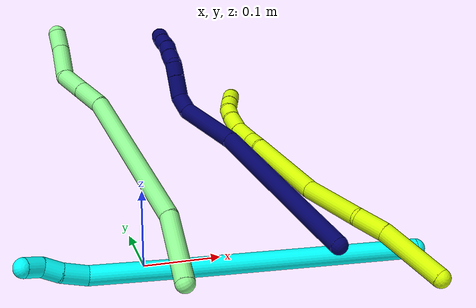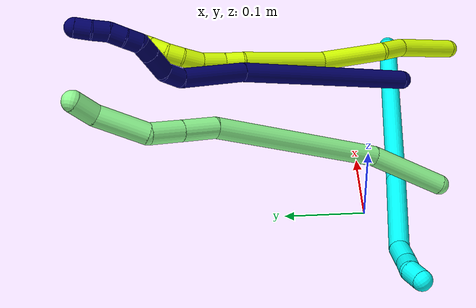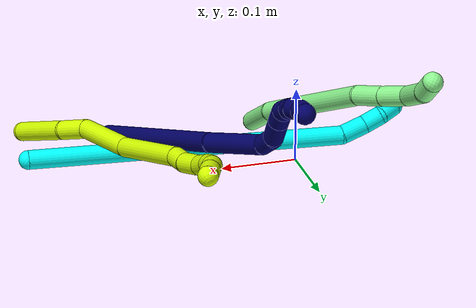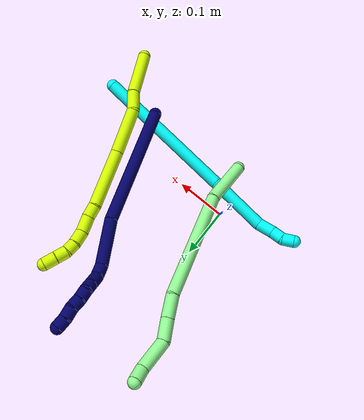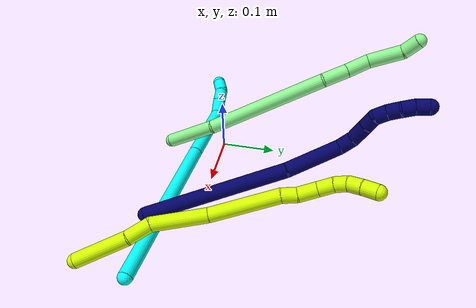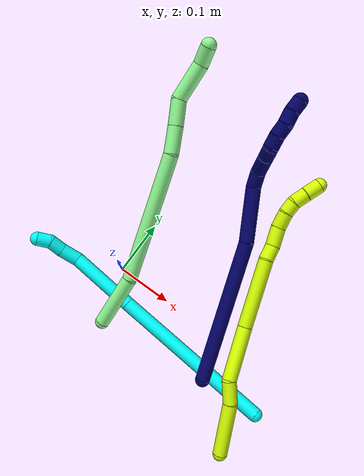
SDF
<sdf version="1.7">
 <world name="default">
  <model name="3">
   <static>0</static>
   <link name="3">
    <collision name="collision-cylinder-e_1_1_4">
     <pose>-0.132206 0.014616 -0.063108 -2.914 -1.11519 2.77908</pose>
     <geometry><cylinder><radius>0.0125</radius><length>0.294446</length></cylinder></geometry>
     <surface>
      <friction><ode><mu>1.16</mu><mu2>1.16</mu2><slip1>0</slip1><slip2>0</slip2></ode></friction>
      <contact><ode><kp>1e+06</kp><kd>1</kd><max_vel>0</max_vel><min_depth>0.001</min_depth></ode></contact>
     </surface>
    </collision>
    <visual name="visual-cylinder-e_1_1_4">
     <pose>-0.132206 0.014616 -0.063108 -2.914 -1.11519 2.77908</pose>
     <geometry><cylinder><radius>0.0125</radius><length>0.294446</length></cylinder></geometry>
     <material><ambient>0.003922 1 0.996078 1</ambient></material>
    </visual>
    <collision name="collision-cylinder-e_2_4_5">
     <pose>-0.319234 0.035861 -0.152931 -2.89835 -1.10549 2.7504</pose>
     <geometry><cylinder><radius>0.0125</radius><length>0.122689</length></cylinder></geometry>
     <surface>
      <friction><ode><mu>1.16</mu><mu2>1.16</mu2><slip1>0</slip1><slip2>0</slip2></ode></friction>
      <contact><ode><kp>1e+06</kp><kd>1</kd><max_vel>0</max_vel><min_depth>0.001</min_depth></ode></contact>
     </surface>
    </collision>
    <visual name="visual-cylinder-e_2_4_5">
     <pose>-0.319234 0.035861 -0.152931 -2.89835 -1.10549 2.7504</pose>
     <geometry><cylinder><radius>0.0125</radius><length>0.122689</length></cylinder></geometry>
     <material><ambient>0.003922 1 0.996078 1</ambient></material>
    </visual>
    <collision name="collision-cylinder-e_3_5_6">
     <pose>-0.390189 0.047033 -0.181714 -1.99804 -1.27077 1.70661</pose>
     <geometry><cylinder><radius>0.0125</radius><length>0.033774</length></cylinder></geometry>
     <surface>
      <friction><ode><mu>1.16</mu><mu2>1.16</mu2><slip1>0</slip1><slip2>0</slip2></ode></friction>
      <contact><ode><kp>1e+06</kp><kd>1</kd><max_vel>0</max_vel><min_depth>0.001</min_depth></ode></contact>
     </surface>
    </collision>
    <visual name="visual-cylinder-e_3_5_6">
     <pose>-0.390189 0.047033 -0.181714 -1.99804 -1.27077 1.70661</pose>
     <geometry><cylinder><radius>0.0125</radius><length>0.033774</length></cylinder></geometry>
     <material><ambient>0.003922 1 0.996078 1</ambient></material>
    </visual>
    <collision name="collision-cylinder-e_4_6_7">
     <pose>-0.417463 0.057122 -0.185572 -1.88303 -1.08882 1.38747</pose>
     <geometry><cylinder><radius>0.0125</radius><length>0.025147</length></cylinder></geometry>
     <surface>
      <friction><ode><mu>1.16</mu><mu2>1.16</mu2><slip1>0</slip1><slip2>0</slip2></ode></friction>
      <contact><ode><kp>1e+06</kp><kd>1</kd><max_vel>0</max_vel><min_depth>0.001</min_depth></ode></contact>
     </surface>
    </collision>
    <visual name="visual-cylinder-e_4_6_7">
     <pose>-0.417463 0.057122 -0.185572 -1.88303 -1.08882 1.38747</pose>
     <geometry><cylinder><radius>0.0125</radius><length>0.025147</length></cylinder></geometry>
     <material><ambient>0.003922 1 0.996078 1</ambient></material>
    </visual>
    <collision name="collision-cylinder-e_5_7_2">
     <pose>-0.440381 0.063883 -0.185583 -0.599322 -1.38982 0.504165</pose>
     <geometry><cylinder><radius>0.0125</radius><length>0.023944</length></cylinder></geometry>
     <surface>
      <friction><ode><mu>1.16</mu><mu2>1.16</mu2><slip1>0</slip1><slip2>0</slip2></ode></friction>
      <contact><ode><kp>1e+06</kp><kd>1</kd><max_vel>0</max_vel><min_depth>0.001</min_depth></ode></contact>
     </surface>
    </collision>
    <visual name="visual-cylinder-e_5_7_2">
     <pose>-0.440381 0.063883 -0.185583 -0.599322 -1.38982 0.504165</pose>
     <geometry><cylinder><radius>0.0125</radius><length>0.023944</length></cylinder></geometry>
     <material><ambient>0.003922 1 0.996078 1</ambient></material>
    </visual>
    <collision name="collision-sphere-2">
     <pose>-0.452157 0.065099 -0.183804 0 -0 0</pose>
     <geometry><sphere><radius>0.0125</radius></sphere></geometry>
     <surface>
      <friction><ode><mu>1.16</mu><mu2>1.16</mu2><slip1>0</slip1><slip2>0</slip2></ode></friction>
      <contact><ode><kp>1e+06</kp><kd>1</kd><max_vel>0</max_vel><min_depth>0.001</min_depth></ode></contact>
     </surface>
    </collision>
    <visual name="visual-sphere-2">
     <pose>-0.452157 0.065099 -0.183804 0 -0 0</pose>
     <geometry><sphere><radius>0.0125</radius></sphere></geometry>
     <material><ambient>0.003922 1 0.996078 1</ambient></material>
    </visual>
    <collision name="collision-sphere-7">
     <pose>-0.428604 0.062668 -0.187362 0 -0 0</pose>
     <geometry><sphere><radius>0.0125</radius></sphere></geometry>
     <surface>
      <friction><ode><mu>1.16</mu><mu2>1.16</mu2><slip1>0</slip1><slip2>0</slip2></ode></friction>
      <contact><ode><kp>1e+06</kp><kd>1</kd><max_vel>0</max_vel><min_depth>0.001</min_depth></ode></contact>
     </surface>
    </collision>
    <visual name="visual-sphere-7">
     <pose>-0.428604 0.062668 -0.187362 0 -0 0</pose>
     <geometry><sphere><radius>0.0125</radius></sphere></geometry>
     <material><ambient>0.003922 1 0.996078 1</ambient></material>
    </visual>
    <collision name="collision-sphere-6">
     <pose>-0.406322 0.051575 -0.183782 0 -0 0</pose>
     <geometry><sphere><radius>0.0125</radius></sphere></geometry>
     <surface>
      <friction><ode><mu>1.16</mu><mu2>1.16</mu2><slip1>0</slip1><slip2>0</slip2></ode></friction>
      <contact><ode><kp>1e+06</kp><kd>1</kd><max_vel>0</max_vel><min_depth>0.001</min_depth></ode></contact>
     </surface>
    </collision>
    <visual name="visual-sphere-6">
     <pose>-0.406322 0.051575 -0.183782 0 -0 0</pose>
     <geometry><sphere><radius>0.0125</radius></sphere></geometry>
     <material><ambient>0.003922 1 0.996078 1</ambient></material>
    </visual>
    <collision name="collision-sphere-5">
     <pose>-0.374057 0.042491 -0.179645 0 -0 0</pose>
     <geometry><sphere><radius>0.0125</radius></sphere></geometry>
     <surface>
      <friction><ode><mu>1.16</mu><mu2>1.16</mu2><slip1>0</slip1><slip2>0</slip2></ode></friction>
      <contact><ode><kp>1e+06</kp><kd>1</kd><max_vel>0</max_vel><min_depth>0.001</min_depth></ode></contact>
     </surface>
    </collision>
    <visual name="visual-sphere-5">
     <pose>-0.374057 0.042491 -0.179645 0 -0 0</pose>
     <geometry><sphere><radius>0.0125</radius></sphere></geometry>
     <material><ambient>0.003922 1 0.996078 1</ambient></material>
    </visual>
    <collision name="collision-sphere-1">
     <geometry><sphere><radius>0.0125</radius></sphere></geometry>
     <surface>
      <friction><ode><mu>1.16</mu><mu2>1.16</mu2><slip1>0</slip1><slip2>0</slip2></ode></friction>
      <contact><ode><kp>1e+06</kp><kd>1</kd><max_vel>0</max_vel><min_depth>0.001</min_depth></ode></contact>
     </surface>
    </collision>
    <visual name="visual-sphere-1">
     <geometry><sphere><radius>0.0125</radius></sphere></geometry>
     <material><ambient>0.003922 1 0.996078 1</ambient></material>
    </visual>
    <collision name="collision-sphere-4">
     <pose>-0.264412 0.029232 -0.126216 0 -0 0</pose>
     <geometry><sphere><radius>0.0125</radius></sphere></geometry>
     <surface>
      <friction><ode><mu>1.16</mu><mu2>1.16</mu2><slip1>0</slip1><slip2>0</slip2></ode></friction>
      <contact><ode><kp>1e+06</kp><kd>1</kd><max_vel>0</max_vel><min_depth>0.001</min_depth></ode></contact>
     </surface>
    </collision>
    <visual name="visual-sphere-4">
     <pose>-0.264412 0.029232 -0.126216 0 -0 0</pose>
     <geometry><sphere><radius>0.0125</radius></sphere></geometry>
     <material><ambient>0.003922 1 0.996078 1</ambient></material>
    </visual>
    <inertial>
     <pose>-0.224629 0.026516 -0.105184 0 -0 0</pose>
     <mass>0.5</mass>
     <inertia>
      <ixx>-0.000617</ixx>
      <ixy>0</ixy>
      <ixz>0</ixz>
      <iyy>0.002634</iyy>
      <iyz>0</iyz>
      <izz>0.001825</izz>
     </inertia>
    </inertial>
   </link>
   <pose>0.340594 -0.071135 0.01206 1.1376 0.09771 0.358022</pose>
  </model>
  <model name="7">
   <static>0</static>
   <link name="7">
    <collision name="collision-cylinder-e_1_1_4">
     <pose>-0.005815 0.012016 0.122889 -0.097468 -0.047062 0.002296</pose>
     <geometry><cylinder><radius>0.0125</radius><length>0.247223</length></cylinder></geometry>
     <surface>
      <friction><ode><mu>1.16</mu><mu2>1.16</mu2><slip1>0</slip1><slip2>0</slip2></ode></friction>
      <contact><ode><kp>1e+06</kp><kd>1</kd><max_vel>0</max_vel><min_depth>0.001</min_depth></ode></contact>
     </surface>
    </collision>
    <visual name="visual-cylinder-e_1_1_4">
     <pose>-0.005815 0.012016 0.122889 -0.097468 -0.047062 0.002296</pose>
     <geometry><cylinder><radius>0.0125</radius><length>0.247223</length></cylinder></geometry>
     <material><ambient>0.003922 0 0.403922 1</ambient></material>
    </visual>
    <collision name="collision-cylinder-e_2_4_5">
     <pose>-0.019199 0.02208 0.291252 0.042882 -0.164781 -0.003542</pose>
     <geometry><cylinder><radius>0.0125</radius><length>0.092283</length></cylinder></geometry>
     <surface>
      <friction><ode><mu>1.16</mu><mu2>1.16</mu2><slip1>0</slip1><slip2>0</slip2></ode></friction>
      <contact><ode><kp>1e+06</kp><kd>1</kd><max_vel>0</max_vel><min_depth>0.001</min_depth></ode></contact>
     </surface>
    </collision>
    <visual name="visual-cylinder-e_2_4_5">
     <pose>-0.019199 0.02208 0.291252 0.042882 -0.164781 -0.003542</pose>
     <geometry><cylinder><radius>0.0125</radius><length>0.092283</length></cylinder></geometry>
     <material><ambient>0.003922 0 0.403922 1</ambient></material>
    </visual>
    <collision name="collision-cylinder-e_3_5_6">
     <pose>-0.0238 0.01898 0.349374 0.090624 0.229621 0.010458</pose>
     <geometry><cylinder><radius>0.0125</radius><length>0.026083</length></cylinder></geometry>
     <surface>
      <friction><ode><mu>1.16</mu><mu2>1.16</mu2><slip1>0</slip1><slip2>0</slip2></ode></friction>
      <contact><ode><kp>1e+06</kp><kd>1</kd><max_vel>0</max_vel><min_depth>0.001</min_depth></ode></contact>
     </surface>
    </collision>
    <visual name="visual-cylinder-e_3_5_6">
     <pose>-0.0238 0.01898 0.349374 0.090624 0.229621 0.010458</pose>
     <geometry><cylinder><radius>0.0125</radius><length>0.026083</length></cylinder></geometry>
     <material><ambient>0.003922 0 0.403922 1</ambient></material>
    </visual>
    <collision name="collision-cylinder-e_4_6_7">
     <pose>-0.011293 0.014938 0.374337 0.230666 0.646039 0.077519</pose>
     <geometry><cylinder><radius>0.0125</radius><length>0.031688</length></cylinder></geometry>
     <surface>
      <friction><ode><mu>1.16</mu><mu2>1.16</mu2><slip1>0</slip1><slip2>0</slip2></ode></friction>
      <contact><ode><kp>1e+06</kp><kd>1</kd><max_vel>0</max_vel><min_depth>0.001</min_depth></ode></contact>
     </surface>
    </collision>
    <visual name="visual-cylinder-e_4_6_7">
     <pose>-0.011293 0.014938 0.374337 0.230666 0.646039 0.077519</pose>
     <geometry><cylinder><radius>0.0125</radius><length>0.031688</length></cylinder></geometry>
     <material><ambient>0.003922 0 0.403922 1</ambient></material>
    </visual>
    <collision name="collision-cylinder-e_5_7_8">
     <pose>0.004549 0.010219 0.395061 0.213973 0.632292 0.070234</pose>
     <geometry><cylinder><radius>0.0125</radius><length>0.021331</length></cylinder></geometry>
     <surface>
      <friction><ode><mu>1.16</mu><mu2>1.16</mu2><slip1>0</slip1><slip2>0</slip2></ode></friction>
      <contact><ode><kp>1e+06</kp><kd>1</kd><max_vel>0</max_vel><min_depth>0.001</min_depth></ode></contact>
     </surface>
    </collision>
    <visual name="visual-cylinder-e_5_7_8">
     <pose>0.004549 0.010219 0.395061 0.213973 0.632292 0.070234</pose>
     <geometry><cylinder><radius>0.0125</radius><length>0.021331</length></cylinder></geometry>
     <material><ambient>0.003922 0 0.403922 1</ambient></material>
    </visual>
    <collision name="collision-cylinder-e_6_8_9">
     <pose>0.013128 0.009736 0.413281 -0.136123 0.225778 -0.015456</pose>
     <geometry><cylinder><radius>0.0125</radius><length>0.020325</length></cylinder></geometry>
     <surface>
      <friction><ode><mu>1.16</mu><mu2>1.16</mu2><slip1>0</slip1><slip2>0</slip2></ode></friction>
      <contact><ode><kp>1e+06</kp><kd>1</kd><max_vel>0</max_vel><min_depth>0.001</min_depth></ode></contact>
     </surface>
    </collision>
    <visual name="visual-cylinder-e_6_8_9">
     <pose>0.013128 0.009736 0.413281 -0.136123 0.225778 -0.015456</pose>
     <geometry><cylinder><radius>0.0125</radius><length>0.020325</length></cylinder></geometry>
     <material><ambient>0.003922 0 0.403922 1</ambient></material>
    </visual>
    <collision name="collision-cylinder-e_7_9_10">
     <pose>0.017948 0.014 0.432324 -0.306421 0.257163 -0.039926</pose>
     <geometry><cylinder><radius>0.0125</radius><length>0.020019</length></cylinder></geometry>
     <surface>
      <friction><ode><mu>1.16</mu><mu2>1.16</mu2><slip1>0</slip1><slip2>0</slip2></ode></friction>
      <contact><ode><kp>1e+06</kp><kd>1</kd><max_vel>0</max_vel><min_depth>0.001</min_depth></ode></contact>
     </surface>
    </collision>
    <visual name="visual-cylinder-e_7_9_10">
     <pose>0.017948 0.014 0.432324 -0.306421 0.257163 -0.039926</pose>
     <geometry><cylinder><radius>0.0125</radius><length>0.020019</length></cylinder></geometry>
     <material><ambient>0.003922 0 0.403922 1</ambient></material>
    </visual>
    <collision name="collision-cylinder-e_8_10_11">
     <pose>0.020387 0.019543 0.451587 -0.255642 -0.010302 0.001324</pose>
     <geometry><cylinder><radius>0.0125</radius><length>0.020743</length></cylinder></geometry>
     <surface>
      <friction><ode><mu>1.16</mu><mu2>1.16</mu2><slip1>0</slip1><slip2>0</slip2></ode></friction>
      <contact><ode><kp>1e+06</kp><kd>1</kd><max_vel>0</max_vel><min_depth>0.001</min_depth></ode></contact>
     </surface>
    </collision>
    <visual name="visual-cylinder-e_8_10_11">
     <pose>0.020387 0.019543 0.451587 -0.255642 -0.010302 0.001324</pose>
     <geometry><cylinder><radius>0.0125</radius><length>0.020743</length></cylinder></geometry>
     <material><ambient>0.003922 0 0.403922 1</ambient></material>
    </visual>
    <collision name="collision-cylinder-e_9_11_2">
     <pose>0.020646 0.026656 0.470718 -0.458593 0.036051 -0.008415</pose>
     <geometry><cylinder><radius>0.0125</radius><length>0.020304</length></cylinder></geometry>
     <surface>
      <friction><ode><mu>1.16</mu><mu2>1.16</mu2><slip1>0</slip1><slip2>0</slip2></ode></friction>
      <contact><ode><kp>1e+06</kp><kd>1</kd><max_vel>0</max_vel><min_depth>0.001</min_depth></ode></contact>
     </surface>
    </collision>
    <visual name="visual-cylinder-e_9_11_2">
     <pose>0.020646 0.026656 0.470718 -0.458593 0.036051 -0.008415</pose>
     <geometry><cylinder><radius>0.0125</radius><length>0.020304</length></cylinder></geometry>
     <material><ambient>0.003922 0 0.403922 1</ambient></material>
    </visual>
    <collision name="collision-sphere-2">
     <pose>0.021012 0.031147 0.479815 0 -0 0</pose>
     <geometry><sphere><radius>0.0125</radius></sphere></geometry>
     <surface>
      <friction><ode><mu>1.16</mu><mu2>1.16</mu2><slip1>0</slip1><slip2>0</slip2></ode></friction>
      <contact><ode><kp>1e+06</kp><kd>1</kd><max_vel>0</max_vel><min_depth>0.001</min_depth></ode></contact>
     </surface>
    </collision>
    <visual name="visual-sphere-2">
     <pose>0.021012 0.031147 0.479815 0 -0 0</pose>
     <geometry><sphere><radius>0.0125</radius></sphere></geometry>
     <material><ambient>0.003922 0 0.403922 1</ambient></material>
    </visual>
    <collision name="collision-sphere-11">
     <pose>0.020281 0.022165 0.461621 0 -0 0</pose>
     <geometry><sphere><radius>0.0125</radius></sphere></geometry>
     <surface>
      <friction><ode><mu>1.16</mu><mu2>1.16</mu2><slip1>0</slip1><slip2>0</slip2></ode></friction>
      <contact><ode><kp>1e+06</kp><kd>1</kd><max_vel>0</max_vel><min_depth>0.001</min_depth></ode></contact>
     </surface>
    </collision>
    <visual name="visual-sphere-11">
     <pose>0.020281 0.022165 0.461621 0 -0 0</pose>
     <geometry><sphere><radius>0.0125</radius></sphere></geometry>
     <material><ambient>0.003922 0 0.403922 1</ambient></material>
    </visual>
    <collision name="collision-sphere-10">
     <pose>0.020494 0.01692 0.441554 0 -0 0</pose>
     <geometry><sphere><radius>0.0125</radius></sphere></geometry>
     <surface>
      <friction><ode><mu>1.16</mu><mu2>1.16</mu2><slip1>0</slip1><slip2>0</slip2></ode></friction>
      <contact><ode><kp>1e+06</kp><kd>1</kd><max_vel>0</max_vel><min_depth>0.001</min_depth></ode></contact>
     </surface>
    </collision>
    <visual name="visual-sphere-10">
     <pose>0.020494 0.01692 0.441554 0 -0 0</pose>
     <geometry><sphere><radius>0.0125</radius></sphere></geometry>
     <material><ambient>0.003922 0 0.403922 1</ambient></material>
    </visual>
    <collision name="collision-sphere-9">
     <pose>0.015403 0.01108 0.423094 0 -0 0</pose>
     <geometry><sphere><radius>0.0125</radius></sphere></geometry>
     <surface>
      <friction><ode><mu>1.16</mu><mu2>1.16</mu2><slip1>0</slip1><slip2>0</slip2></ode></friction>
      <contact><ode><kp>1e+06</kp><kd>1</kd><max_vel>0</max_vel><min_depth>0.001</min_depth></ode></contact>
     </surface>
    </collision>
    <visual name="visual-sphere-9">
     <pose>0.015403 0.01108 0.423094 0 -0 0</pose>
     <geometry><sphere><radius>0.0125</radius></sphere></geometry>
     <material><ambient>0.003922 0 0.403922 1</ambient></material>
    </visual>
    <collision name="collision-sphere-4">
     <pose>-0.01163 0.024032 0.245777 0 -0 0</pose>
     <geometry><sphere><radius>0.0125</radius></sphere></geometry>
     <surface>
      <friction><ode><mu>1.16</mu><mu2>1.16</mu2><slip1>0</slip1><slip2>0</slip2></ode></friction>
      <contact><ode><kp>1e+06</kp><kd>1</kd><max_vel>0</max_vel><min_depth>0.001</min_depth></ode></contact>
     </surface>
    </collision>
    <visual name="visual-sphere-4">
     <pose>-0.01163 0.024032 0.245777 0 -0 0</pose>
     <geometry><sphere><radius>0.0125</radius></sphere></geometry>
     <material><ambient>0.003922 0 0.403922 1</ambient></material>
    </visual>
    <collision name="collision-sphere-1">
     <geometry><sphere><radius>0.0125</radius></sphere></geometry>
     <surface>
      <friction><ode><mu>1.16</mu><mu2>1.16</mu2><slip1>0</slip1><slip2>0</slip2></ode></friction>
      <contact><ode><kp>1e+06</kp><kd>1</kd><max_vel>0</max_vel><min_depth>0.001</min_depth></ode></contact>
     </surface>
    </collision>
    <visual name="visual-sphere-1">
     <geometry><sphere><radius>0.0125</radius></sphere></geometry>
     <material><ambient>0.003922 0 0.403922 1</ambient></material>
    </visual>
    <collision name="collision-sphere-8">
     <pose>0.010853 0.008392 0.403469 0 -0 0</pose>
     <geometry><sphere><radius>0.0125</radius></sphere></geometry>
     <surface>
      <friction><ode><mu>1.16</mu><mu2>1.16</mu2><slip1>0</slip1><slip2>0</slip2></ode></friction>
      <contact><ode><kp>1e+06</kp><kd>1</kd><max_vel>0</max_vel><min_depth>0.001</min_depth></ode></contact>
     </surface>
    </collision>
    <visual name="visual-sphere-8">
     <pose>0.010853 0.008392 0.403469 0 -0 0</pose>
     <geometry><sphere><radius>0.0125</radius></sphere></geometry>
     <material><ambient>0.003922 0 0.403922 1</ambient></material>
    </visual>
    <collision name="collision-sphere-5">
     <pose>-0.026768 0.020129 0.336727 0 -0 0</pose>
     <geometry><sphere><radius>0.0125</radius></sphere></geometry>
     <surface>
      <friction><ode><mu>1.16</mu><mu2>1.16</mu2><slip1>0</slip1><slip2>0</slip2></ode></friction>
      <contact><ode><kp>1e+06</kp><kd>1</kd><max_vel>0</max_vel><min_depth>0.001</min_depth></ode></contact>
     </surface>
    </collision>
    <visual name="visual-sphere-5">
     <pose>-0.026768 0.020129 0.336727 0 -0 0</pose>
     <geometry><sphere><radius>0.0125</radius></sphere></geometry>
     <material><ambient>0.003922 0 0.403922 1</ambient></material>
    </visual>
    <collision name="collision-sphere-6">
     <pose>-0.020832 0.017831 0.362021 0 -0 0</pose>
     <geometry><sphere><radius>0.0125</radius></sphere></geometry>
     <surface>
      <friction><ode><mu>1.16</mu><mu2>1.16</mu2><slip1>0</slip1><slip2>0</slip2></ode></friction>
      <contact><ode><kp>1e+06</kp><kd>1</kd><max_vel>0</max_vel><min_depth>0.001</min_depth></ode></contact>
     </surface>
    </collision>
    <visual name="visual-sphere-6">
     <pose>-0.020832 0.017831 0.362021 0 -0 0</pose>
     <geometry><sphere><radius>0.0125</radius></sphere></geometry>
     <material><ambient>0.003922 0 0.403922 1</ambient></material>
    </visual>
    <collision name="collision-sphere-7">
     <pose>-0.001754 0.012046 0.386654 0 -0 0</pose>
     <geometry><sphere><radius>0.0125</radius></sphere></geometry>
     <surface>
      <friction><ode><mu>1.16</mu><mu2>1.16</mu2><slip1>0</slip1><slip2>0</slip2></ode></friction>
      <contact><ode><kp>1e+06</kp><kd>1</kd><max_vel>0</max_vel><min_depth>0.001</min_depth></ode></contact>
     </surface>
    </collision>
    <visual name="visual-sphere-7">
     <pose>-0.001754 0.012046 0.386654 0 -0 0</pose>
     <geometry><sphere><radius>0.0125</radius></sphere></geometry>
     <material><ambient>0.003922 0 0.403922 1</ambient></material>
    </visual>
    <inertial>
     <pose>-0.005246 0.015239 0.24528 0 -0 0</pose>
     <mass>0.5</mass>
     <inertia>
      <ixx>0.001353</ixx>
      <ixy>0</ixy>
      <ixz>0</ixz>
      <iyy>0.001351</iyy>
      <iyz>0</iyz>
      <izz>-1.7e-05</izz>
     </inertia>
    </inertial>
   </link>
   <pose>0.231323 -0.076341 0.032037 -0.846872 -0.927189 -0.230762</pose>
  </model>
  <model name="13">
   <static>0</static>
   <link name="13">
    <collision name="collision-cylinder-e_1_1_4">
     <pose>-0.005155 0.049683 0.002037 -1.52982 -0.103301 0.099159</pose>
     <geometry><cylinder><radius>0.0125</radius><length>0.099983</length></cylinder></geometry>
     <surface>
      <friction><ode><mu>1.16</mu><mu2>1.16</mu2><slip1>0</slip1><slip2>0</slip2></ode></friction>
      <contact><ode><kp>1e+06</kp><kd>1</kd><max_vel>0</max_vel><min_depth>0.001</min_depth></ode></contact>
     </surface>
    </collision>
    <visual name="visual-cylinder-e_1_1_4">
     <pose>-0.005155 0.049683 0.002037 -1.52982 -0.103301 0.099159</pose>
     <geometry><cylinder><radius>0.0125</radius><length>0.099983</length></cylinder></geometry>
     <material><ambient>0.564706 0.984314 0.572549 1</ambient></material>
    </visual>
    <collision name="collision-cylinder-e_2_4_5">
     <pose>-0.029908 0.206158 -0.018666 -1.78059 -0.177605 0.219102</pose>
     <geometry><cylinder><radius>0.0125</radius><length>0.221861</length></cylinder></geometry>
     <surface>
      <friction><ode><mu>1.16</mu><mu2>1.16</mu2><slip1>0</slip1><slip2>0</slip2></ode></friction>
      <contact><ode><kp>1e+06</kp><kd>1</kd><max_vel>0</max_vel><min_depth>0.001</min_depth></ode></contact>
     </surface>
    </collision>
    <visual name="visual-cylinder-e_2_4_5">
     <pose>-0.029908 0.206158 -0.018666 -1.78059 -0.177605 0.219102</pose>
     <geometry><cylinder><radius>0.0125</radius><length>0.221861</length></cylinder></geometry>
     <material><ambient>0.564706 0.984314 0.572549 1</ambient></material>
    </visual>
    <collision name="collision-cylinder-e_3_5_6">
     <pose>-0.053002 0.332563 -0.051127 -2.03097 -0.158316 0.254323</pose>
     <geometry><cylinder><radius>0.0125</radius><length>0.044337</length></cylinder></geometry>
     <surface>
      <friction><ode><mu>1.16</mu><mu2>1.16</mu2><slip1>0</slip1><slip2>0</slip2></ode></friction>
      <contact><ode><kp>1e+06</kp><kd>1</kd><max_vel>0</max_vel><min_depth>0.001</min_depth></ode></contact>
     </surface>
    </collision>
    <visual name="visual-cylinder-e_3_5_6">
     <pose>-0.053002 0.332563 -0.051127 -2.03097 -0.158316 0.254323</pose>
     <geometry><cylinder><radius>0.0125</radius><length>0.044337</length></cylinder></geometry>
     <material><ambient>0.564706 0.984314 0.572549 1</ambient></material>
    </visual>
    <collision name="collision-cylinder-e_4_6_7">
     <pose>-0.060728 0.37048 -0.07011 -2.03923 -0.20341 0.329035</pose>
     <geometry><cylinder><radius>0.0125</radius><length>0.041888</length></cylinder></geometry>
     <surface>
      <friction><ode><mu>1.16</mu><mu2>1.16</mu2><slip1>0</slip1><slip2>0</slip2></ode></friction>
      <contact><ode><kp>1e+06</kp><kd>1</kd><max_vel>0</max_vel><min_depth>0.001</min_depth></ode></contact>
     </surface>
    </collision>
    <visual name="visual-cylinder-e_4_6_7">
     <pose>-0.060728 0.37048 -0.07011 -2.03923 -0.20341 0.329035</pose>
     <geometry><cylinder><radius>0.0125</radius><length>0.041888</length></cylinder></geometry>
     <material><ambient>0.564706 0.984314 0.572549 1</ambient></material>
    </visual>
    <collision name="collision-cylinder-e_5_7_8">
     <pose>-0.066062 0.419608 -0.078977 -1.55803 -0.035792 0.035338</pose>
     <geometry><cylinder><radius>0.0125</radius><length>0.061695</length></cylinder></geometry>
     <surface>
      <friction><ode><mu>1.16</mu><mu2>1.16</mu2><slip1>0</slip1><slip2>0</slip2></ode></friction>
      <contact><ode><kp>1e+06</kp><kd>1</kd><max_vel>0</max_vel><min_depth>0.001</min_depth></ode></contact>
     </surface>
    </collision>
    <visual name="visual-cylinder-e_5_7_8">
     <pose>-0.066062 0.419608 -0.078977 -1.55803 -0.035792 0.035338</pose>
     <geometry><cylinder><radius>0.0125</radius><length>0.061695</length></cylinder></geometry>
     <material><ambient>0.564706 0.984314 0.572549 1</ambient></material>
    </visual>
    <collision name="collision-cylinder-e_6_8_2">
     <pose>-0.07259 0.464457 -0.077012 -1.45922 -0.366902 0.328826</pose>
     <geometry><cylinder><radius>0.0125</radius><length>0.030236</length></cylinder></geometry>
     <surface>
      <friction><ode><mu>1.16</mu><mu2>1.16</mu2><slip1>0</slip1><slip2>0</slip2></ode></friction>
      <contact><ode><kp>1e+06</kp><kd>1</kd><max_vel>0</max_vel><min_depth>0.001</min_depth></ode></contact>
     </surface>
    </collision>
    <visual name="visual-cylinder-e_6_8_2">
     <pose>-0.07259 0.464457 -0.077012 -1.45922 -0.366902 0.328826</pose>
     <geometry><cylinder><radius>0.0125</radius><length>0.030236</length></cylinder></geometry>
     <material><ambient>0.564706 0.984314 0.572549 1</ambient></material>
    </visual>
    <collision name="collision-sphere-2">
     <pose>-0.078013 0.478481 -0.075441 0 -0 0</pose>
     <geometry><sphere><radius>0.0125</radius></sphere></geometry>
     <surface>
      <friction><ode><mu>1.16</mu><mu2>1.16</mu2><slip1>0</slip1><slip2>0</slip2></ode></friction>
      <contact><ode><kp>1e+06</kp><kd>1</kd><max_vel>0</max_vel><min_depth>0.001</min_depth></ode></contact>
     </surface>
    </collision>
    <visual name="visual-sphere-2">
     <pose>-0.078013 0.478481 -0.075441 0 -0 0</pose>
     <geometry><sphere><radius>0.0125</radius></sphere></geometry>
     <material><ambient>0.564706 0.984314 0.572549 1</ambient></material>
    </visual>
    <collision name="collision-sphere-4">
     <pose>-0.01031 0.099366 0.004074 0 -0 0</pose>
     <geometry><sphere><radius>0.0125</radius></sphere></geometry>
     <surface>
      <friction><ode><mu>1.16</mu><mu2>1.16</mu2><slip1>0</slip1><slip2>0</slip2></ode></friction>
      <contact><ode><kp>1e+06</kp><kd>1</kd><max_vel>0</max_vel><min_depth>0.001</min_depth></ode></contact>
     </surface>
    </collision>
    <visual name="visual-sphere-4">
     <pose>-0.01031 0.099366 0.004074 0 -0 0</pose>
     <geometry><sphere><radius>0.0125</radius></sphere></geometry>
     <material><ambient>0.564706 0.984314 0.572549 1</ambient></material>
    </visual>
    <collision name="collision-sphere-1">
     <geometry><sphere><radius>0.0125</radius></sphere></geometry>
     <surface>
      <friction><ode><mu>1.16</mu><mu2>1.16</mu2><slip1>0</slip1><slip2>0</slip2></ode></friction>
      <contact><ode><kp>1e+06</kp><kd>1</kd><max_vel>0</max_vel><min_depth>0.001</min_depth></ode></contact>
     </surface>
    </collision>
    <visual name="visual-sphere-1">
     <geometry><sphere><radius>0.0125</radius></sphere></geometry>
     <material><ambient>0.564706 0.984314 0.572549 1</ambient></material>
    </visual>
    <collision name="collision-sphere-8">
     <pose>-0.067166 0.450434 -0.078583 0 -0 0</pose>
     <geometry><sphere><radius>0.0125</radius></sphere></geometry>
     <surface>
      <friction><ode><mu>1.16</mu><mu2>1.16</mu2><slip1>0</slip1><slip2>0</slip2></ode></friction>
      <contact><ode><kp>1e+06</kp><kd>1</kd><max_vel>0</max_vel><min_depth>0.001</min_depth></ode></contact>
     </surface>
    </collision>
    <visual name="visual-sphere-8">
     <pose>-0.067166 0.450434 -0.078583 0 -0 0</pose>
     <geometry><sphere><radius>0.0125</radius></sphere></geometry>
     <material><ambient>0.564706 0.984314 0.572549 1</ambient></material>
    </visual>
    <collision name="collision-sphere-5">
     <pose>-0.049507 0.31295 -0.041405 0 -0 0</pose>
     <geometry><sphere><radius>0.0125</radius></sphere></geometry>
     <surface>
      <friction><ode><mu>1.16</mu><mu2>1.16</mu2><slip1>0</slip1><slip2>0</slip2></ode></friction>
      <contact><ode><kp>1e+06</kp><kd>1</kd><max_vel>0</max_vel><min_depth>0.001</min_depth></ode></contact>
     </surface>
    </collision>
    <visual name="visual-sphere-5">
     <pose>-0.049507 0.31295 -0.041405 0 -0 0</pose>
     <geometry><sphere><radius>0.0125</radius></sphere></geometry>
     <material><ambient>0.564706 0.984314 0.572549 1</ambient></material>
    </visual>
    <collision name="collision-sphere-6">
     <pose>-0.056497 0.352177 -0.060848 0 -0 0</pose>
     <geometry><sphere><radius>0.0125</radius></sphere></geometry>
     <surface>
      <friction><ode><mu>1.16</mu><mu2>1.16</mu2><slip1>0</slip1><slip2>0</slip2></ode></friction>
      <contact><ode><kp>1e+06</kp><kd>1</kd><max_vel>0</max_vel><min_depth>0.001</min_depth></ode></contact>
     </surface>
    </collision>
    <visual name="visual-sphere-6">
     <pose>-0.056497 0.352177 -0.060848 0 -0 0</pose>
     <geometry><sphere><radius>0.0125</radius></sphere></geometry>
     <material><ambient>0.564706 0.984314 0.572549 1</ambient></material>
    </visual>
    <collision name="collision-sphere-7">
     <pose>-0.064959 0.388783 -0.079371 0 -0 0</pose>
     <geometry><sphere><radius>0.0125</radius></sphere></geometry>
     <surface>
      <friction><ode><mu>1.16</mu><mu2>1.16</mu2><slip1>0</slip1><slip2>0</slip2></ode></friction>
      <contact><ode><kp>1e+06</kp><kd>1</kd><max_vel>0</max_vel><min_depth>0.001</min_depth></ode></contact>
     </surface>
    </collision>
    <visual name="visual-sphere-7">
     <pose>-0.064959 0.388783 -0.079371 0 -0 0</pose>
     <geometry><sphere><radius>0.0125</radius></sphere></geometry>
     <material><ambient>0.564706 0.984314 0.572549 1</ambient></material>
    </visual>
    <inertial>
     <pose>-0.03663 0.241801 -0.032684 0 -0 0</pose>
     <mass>0.5</mass>
     <inertia>
      <ixx>0.001215</ixx>
      <ixy>0</ixy>
      <ixz>0</ixz>
      <iyy>9.6e-05</iyy>
      <iyz>0</iyz>
      <izz>-0.000841</izz>
     </inertia>
    </inertial>
   </link>
   <pose>0.029657 -0.097715 0.017709 0.720665 0.897841 0.562963</pose>
  </model>
  <model name="15">
   <static>0</static>
   <link name="15">
    <collision name="collision-cylinder-e_1_1_4">
     <pose>-0.032429 0.018334 -0.027591 -2.55509 -0.774759 1.86732</pose>
     <geometry><cylinder><radius>0.0125</radius><length>0.092715</length></cylinder></geometry>
     <surface>
      <friction><ode><mu>1.16</mu><mu2>1.16</mu2><slip1>0</slip1><slip2>0</slip2></ode></friction>
      <contact><ode><kp>1e+06</kp><kd>1</kd><max_vel>0</max_vel><min_depth>0.001</min_depth></ode></contact>
     </surface>
    </collision>
    <visual name="visual-cylinder-e_1_1_4">
     <pose>-0.032429 0.018334 -0.027591 -2.55509 -0.774759 1.86732</pose>
     <geometry><cylinder><radius>0.0125</radius><length>0.092715</length></cylinder></geometry>
     <material><ambient>0.835294 1 0 1</ambient></material>
    </visual>
    <collision name="collision-cylinder-e_2_4_5">
     <pose>-0.081004 0.040435 -0.06664 -2.82401 -0.929162 2.52303</pose>
     <geometry><cylinder><radius>0.0125</radius><length>0.040308</length></cylinder></geometry>
     <surface>
      <friction><ode><mu>1.16</mu><mu2>1.16</mu2><slip1>0</slip1><slip2>0</slip2></ode></friction>
      <contact><ode><kp>1e+06</kp><kd>1</kd><max_vel>0</max_vel><min_depth>0.001</min_depth></ode></contact>
     </surface>
    </collision>
    <visual name="visual-cylinder-e_2_4_5">
     <pose>-0.081004 0.040435 -0.06664 -2.82401 -0.929162 2.52303</pose>
     <geometry><cylinder><radius>0.0125</radius><length>0.040308</length></cylinder></geometry>
     <material><ambient>0.835294 1 0 1</ambient></material>
    </visual>
    <collision name="collision-cylinder-e_3_5_6">
     <pose>-0.120948 0.060272 -0.114726 -2.72811 -0.536736 1.83846</pose>
     <geometry><cylinder><radius>0.0125</radius><length>0.093084</length></cylinder></geometry>
     <surface>
      <friction><ode><mu>1.16</mu><mu2>1.16</mu2><slip1>0</slip1><slip2>0</slip2></ode></friction>
      <contact><ode><kp>1e+06</kp><kd>1</kd><max_vel>0</max_vel><min_depth>0.001</min_depth></ode></contact>
     </surface>
    </collision>
    <visual name="visual-cylinder-e_3_5_6">
     <pose>-0.120948 0.060272 -0.114726 -2.72811 -0.536736 1.83846</pose>
     <geometry><cylinder><radius>0.0125</radius><length>0.093084</length></cylinder></geometry>
     <material><ambient>0.835294 1 0 1</ambient></material>
    </visual>
    <collision name="collision-cylinder-e_4_6_7">
     <pose>-0.179956 0.102193 -0.191544 -2.57003 -0.635001 1.68248</pose>
     <geometry><cylinder><radius>0.0125</radius><length>0.118713</length></cylinder></geometry>
     <surface>
      <friction><ode><mu>1.16</mu><mu2>1.16</mu2><slip1>0</slip1><slip2>0</slip2></ode></friction>
      <contact><ode><kp>1e+06</kp><kd>1</kd><max_vel>0</max_vel><min_depth>0.001</min_depth></ode></contact>
     </surface>
    </collision>
    <visual name="visual-cylinder-e_4_6_7">
     <pose>-0.179956 0.102193 -0.191544 -2.57003 -0.635001 1.68248</pose>
     <geometry><cylinder><radius>0.0125</radius><length>0.118713</length></cylinder></geometry>
     <material><ambient>0.835294 1 0 1</ambient></material>
    </visual>
    <collision name="collision-cylinder-e_5_7_8">
     <pose>-0.220327 0.133928 -0.241827 -2.61366 -0.416024 1.32601</pose>
     <geometry><cylinder><radius>0.0125</radius><length>0.025545</length></cylinder></geometry>
     <surface>
      <friction><ode><mu>1.16</mu><mu2>1.16</mu2><slip1>0</slip1><slip2>0</slip2></ode></friction>
      <contact><ode><kp>1e+06</kp><kd>1</kd><max_vel>0</max_vel><min_depth>0.001</min_depth></ode></contact>
     </surface>
    </collision>
    <visual name="visual-cylinder-e_5_7_8">
     <pose>-0.220327 0.133928 -0.241827 -2.61366 -0.416024 1.32601</pose>
     <geometry><cylinder><radius>0.0125</radius><length>0.025545</length></cylinder></geometry>
     <material><ambient>0.835294 1 0 1</ambient></material>
    </visual>
    <collision name="collision-cylinder-e_6_8_9">
     <pose>-0.235417 0.147016 -0.263034 -2.56662 -0.643281 1.69001</pose>
     <geometry><cylinder><radius>0.0125</radius><length>0.033105</length></cylinder></geometry>
     <surface>
      <friction><ode><mu>1.16</mu><mu2>1.16</mu2><slip1>0</slip1><slip2>0</slip2></ode></friction>
      <contact><ode><kp>1e+06</kp><kd>1</kd><max_vel>0</max_vel><min_depth>0.001</min_depth></ode></contact>
     </surface>
    </collision>
    <visual name="visual-cylinder-e_6_8_9">
     <pose>-0.235417 0.147016 -0.263034 -2.56662 -0.643281 1.69001</pose>
     <geometry><cylinder><radius>0.0125</radius><length>0.033105</length></cylinder></geometry>
     <material><ambient>0.835294 1 0 1</ambient></material>
    </visual>
    <collision name="collision-cylinder-e_7_9_10">
     <pose>-0.252999 0.162826 -0.28141 -2.27157 -0.596916 1.16958</pose>
     <geometry><cylinder><radius>0.0125</radius><length>0.027234</length></cylinder></geometry>
     <surface>
      <friction><ode><mu>1.16</mu><mu2>1.16</mu2><slip1>0</slip1><slip2>0</slip2></ode></friction>
      <contact><ode><kp>1e+06</kp><kd>1</kd><max_vel>0</max_vel><min_depth>0.001</min_depth></ode></contact>
     </surface>
    </collision>
    <visual name="visual-cylinder-e_7_9_10">
     <pose>-0.252999 0.162826 -0.28141 -2.27157 -0.596916 1.16958</pose>
     <geometry><cylinder><radius>0.0125</radius><length>0.027234</length></cylinder></geometry>
     <material><ambient>0.835294 1 0 1</ambient></material>
    </visual>
    <collision name="collision-cylinder-e_8_10_11">
     <pose>-0.264586 0.178932 -0.294748 -2.25184 -0.386971 0.779881</pose>
     <geometry><cylinder><radius>0.0125</radius><length>0.020842</length></cylinder></geometry>
     <surface>
      <friction><ode><mu>1.16</mu><mu2>1.16</mu2><slip1>0</slip1><slip2>0</slip2></ode></friction>
      <contact><ode><kp>1e+06</kp><kd>1</kd><max_vel>0</max_vel><min_depth>0.001</min_depth></ode></contact>
     </surface>
    </collision>
    <visual name="visual-cylinder-e_8_10_11">
     <pose>-0.264586 0.178932 -0.294748 -2.25184 -0.386971 0.779881</pose>
     <geometry><cylinder><radius>0.0125</radius><length>0.020842</length></cylinder></geometry>
     <material><ambient>0.835294 1 0 1</ambient></material>
    </visual>
    <collision name="collision-cylinder-e_9_11_12">
     <pose>-0.26921 0.195891 -0.307512 -2.18603 -0.059588 0.114987</pose>
     <geometry><cylinder><radius>0.0125</radius><length>0.023215</length></cylinder></geometry>
     <surface>
      <friction><ode><mu>1.16</mu><mu2>1.16</mu2><slip1>0</slip1><slip2>0</slip2></ode></friction>
      <contact><ode><kp>1e+06</kp><kd>1</kd><max_vel>0</max_vel><min_depth>0.001</min_depth></ode></contact>
     </surface>
    </collision>
    <visual name="visual-cylinder-e_9_11_12">
     <pose>-0.26921 0.195891 -0.307512 -2.18603 -0.059588 0.114987</pose>
     <geometry><cylinder><radius>0.0125</radius><length>0.023215</length></cylinder></geometry>
     <material><ambient>0.835294 1 0 1</ambient></material>
    </visual>
    <collision name="collision-cylinder-e_10_12_2">
     <pose>-0.270032 0.215277 -0.321995 -2.23673 -0.010357 0.021307</pose>
     <geometry><cylinder><radius>0.0125</radius><length>0.025239</length></cylinder></geometry>
     <surface>
      <friction><ode><mu>1.16</mu><mu2>1.16</mu2><slip1>0</slip1><slip2>0</slip2></ode></friction>
      <contact><ode><kp>1e+06</kp><kd>1</kd><max_vel>0</max_vel><min_depth>0.001</min_depth></ode></contact>
     </surface>
    </collision>
    <visual name="visual-cylinder-e_10_12_2">
     <pose>-0.270032 0.215277 -0.321995 -2.23673 -0.010357 0.021307</pose>
     <geometry><cylinder><radius>0.0125</radius><length>0.025239</length></cylinder></geometry>
     <material><ambient>0.835294 1 0 1</ambient></material>
    </visual>
    <collision name="collision-sphere-2">
     <pose>-0.270163 0.225199 -0.329791 0 -0 0</pose>
     <geometry><sphere><radius>0.0125</radius></sphere></geometry>
     <surface>
      <friction><ode><mu>1.16</mu><mu2>1.16</mu2><slip1>0</slip1><slip2>0</slip2></ode></friction>
      <contact><ode><kp>1e+06</kp><kd>1</kd><max_vel>0</max_vel><min_depth>0.001</min_depth></ode></contact>
     </surface>
    </collision>
    <visual name="visual-sphere-2">
     <pose>-0.270163 0.225199 -0.329791 0 -0 0</pose>
     <geometry><sphere><radius>0.0125</radius></sphere></geometry>
     <material><ambient>0.835294 1 0 1</ambient></material>
    </visual>
    <collision name="collision-sphere-12">
     <pose>-0.269901 0.205354 -0.314199 0 -0 0</pose>
     <geometry><sphere><radius>0.0125</radius></sphere></geometry>
     <surface>
      <friction><ode><mu>1.16</mu><mu2>1.16</mu2><slip1>0</slip1><slip2>0</slip2></ode></friction>
      <contact><ode><kp>1e+06</kp><kd>1</kd><max_vel>0</max_vel><min_depth>0.001</min_depth></ode></contact>
     </surface>
    </collision>
    <visual name="visual-sphere-12">
     <pose>-0.269901 0.205354 -0.314199 0 -0 0</pose>
     <geometry><sphere><radius>0.0125</radius></sphere></geometry>
     <material><ambient>0.835294 1 0 1</ambient></material>
    </visual>
    <collision name="collision-sphere-11">
     <pose>-0.268519 0.186429 -0.300824 0 -0 0</pose>
     <geometry><sphere><radius>0.0125</radius></sphere></geometry>
     <surface>
      <friction><ode><mu>1.16</mu><mu2>1.16</mu2><slip1>0</slip1><slip2>0</slip2></ode></friction>
      <contact><ode><kp>1e+06</kp><kd>1</kd><max_vel>0</max_vel><min_depth>0.001</min_depth></ode></contact>
     </surface>
    </collision>
    <visual name="visual-sphere-11">
     <pose>-0.268519 0.186429 -0.300824 0 -0 0</pose>
     <geometry><sphere><radius>0.0125</radius></sphere></geometry>
     <material><ambient>0.835294 1 0 1</ambient></material>
    </visual>
    <collision name="collision-sphere-10">
     <pose>-0.260653 0.171434 -0.288672 0 -0 0</pose>
     <geometry><sphere><radius>0.0125</radius></sphere></geometry>
     <surface>
      <friction><ode><mu>1.16</mu><mu2>1.16</mu2><slip1>0</slip1><slip2>0</slip2></ode></friction>
      <contact><ode><kp>1e+06</kp><kd>1</kd><max_vel>0</max_vel><min_depth>0.001</min_depth></ode></contact>
     </surface>
    </collision>
    <visual name="visual-sphere-10">
     <pose>-0.260653 0.171434 -0.288672 0 -0 0</pose>
     <geometry><sphere><radius>0.0125</radius></sphere></geometry>
     <material><ambient>0.835294 1 0 1</ambient></material>
    </visual>
    <collision name="collision-sphere-9">
     <pose>-0.245345 0.154218 -0.274148 0 -0 0</pose>
     <geometry><sphere><radius>0.0125</radius></sphere></geometry>
     <surface>
      <friction><ode><mu>1.16</mu><mu2>1.16</mu2><slip1>0</slip1><slip2>0</slip2></ode></friction>
      <contact><ode><kp>1e+06</kp><kd>1</kd><max_vel>0</max_vel><min_depth>0.001</min_depth></ode></contact>
     </surface>
    </collision>
    <visual name="visual-sphere-9">
     <pose>-0.245345 0.154218 -0.274148 0 -0 0</pose>
     <geometry><sphere><radius>0.0125</radius></sphere></geometry>
     <material><ambient>0.835294 1 0 1</ambient></material>
    </visual>
    <collision name="collision-sphere-4">
     <pose>-0.064858 0.036668 -0.055181 0 -0 0</pose>
     <geometry><sphere><radius>0.0125</radius></sphere></geometry>
     <surface>
      <friction><ode><mu>1.16</mu><mu2>1.16</mu2><slip1>0</slip1><slip2>0</slip2></ode></friction>
      <contact><ode><kp>1e+06</kp><kd>1</kd><max_vel>0</max_vel><min_depth>0.001</min_depth></ode></contact>
     </surface>
    </collision>
    <visual name="visual-sphere-4">
     <pose>-0.064858 0.036668 -0.055181 0 -0 0</pose>
     <geometry><sphere><radius>0.0125</radius></sphere></geometry>
     <material><ambient>0.835294 1 0 1</ambient></material>
    </visual>
    <collision name="collision-sphere-1">
     <geometry><sphere><radius>0.0125</radius></sphere></geometry>
     <surface>
      <friction><ode><mu>1.16</mu><mu2>1.16</mu2><slip1>0</slip1><slip2>0</slip2></ode></friction>
      <contact><ode><kp>1e+06</kp><kd>1</kd><max_vel>0</max_vel><min_depth>0.001</min_depth></ode></contact>
     </surface>
    </collision>
    <visual name="visual-sphere-1">
     <geometry><sphere><radius>0.0125</radius></sphere></geometry>
     <material><ambient>0.835294 1 0 1</ambient></material>
    </visual>
    <collision name="collision-sphere-8">
     <pose>-0.225489 0.139813 -0.25192 0 -0 0</pose>
     <geometry><sphere><radius>0.0125</radius></sphere></geometry>
     <surface>
      <friction><ode><mu>1.16</mu><mu2>1.16</mu2><slip1>0</slip1><slip2>0</slip2></ode></friction>
      <contact><ode><kp>1e+06</kp><kd>1</kd><max_vel>0</max_vel><min_depth>0.001</min_depth></ode></contact>
     </surface>
    </collision>
    <visual name="visual-sphere-8">
     <pose>-0.225489 0.139813 -0.25192 0 -0 0</pose>
     <geometry><sphere><radius>0.0125</radius></sphere></geometry>
     <material><ambient>0.835294 1 0 1</ambient></material>
    </visual>
    <collision name="collision-sphere-5">
     <pose>-0.09715 0.044201 -0.078099 0 -0 0</pose>
     <geometry><sphere><radius>0.0125</radius></sphere></geometry>
     <surface>
      <friction><ode><mu>1.16</mu><mu2>1.16</mu2><slip1>0</slip1><slip2>0</slip2></ode></friction>
      <contact><ode><kp>1e+06</kp><kd>1</kd><max_vel>0</max_vel><min_depth>0.001</min_depth></ode></contact>
     </surface>
    </collision>
    <visual name="visual-sphere-5">
     <pose>-0.09715 0.044201 -0.078099 0 -0 0</pose>
     <geometry><sphere><radius>0.0125</radius></sphere></geometry>
     <material><ambient>0.835294 1 0 1</ambient></material>
    </visual>
    <collision name="collision-sphere-6">
     <pose>-0.144747 0.076343 -0.151352 0 -0 0</pose>
     <geometry><sphere><radius>0.0125</radius></sphere></geometry>
     <surface>
      <friction><ode><mu>1.16</mu><mu2>1.16</mu2><slip1>0</slip1><slip2>0</slip2></ode></friction>
      <contact><ode><kp>1e+06</kp><kd>1</kd><max_vel>0</max_vel><min_depth>0.001</min_depth></ode></contact>
     </surface>
    </collision>
    <visual name="visual-sphere-6">
     <pose>-0.144747 0.076343 -0.151352 0 -0 0</pose>
     <geometry><sphere><radius>0.0125</radius></sphere></geometry>
     <material><ambient>0.835294 1 0 1</ambient></material>
    </visual>
    <collision name="collision-sphere-7">
     <pose>-0.215165 0.128043 -0.231735 0 -0 0</pose>
     <geometry><sphere><radius>0.0125</radius></sphere></geometry>
     <surface>
      <friction><ode><mu>1.16</mu><mu2>1.16</mu2><slip1>0</slip1><slip2>0</slip2></ode></friction>
      <contact><ode><kp>1e+06</kp><kd>1</kd><max_vel>0</max_vel><min_depth>0.001</min_depth></ode></contact>
     </surface>
    </collision>
    <visual name="visual-sphere-7">
     <pose>-0.215165 0.128043 -0.231735 0 -0 0</pose>
     <geometry><sphere><radius>0.0125</radius></sphere></geometry>
     <material><ambient>0.835294 1 0 1</ambient></material>
    </visual>
    <inertial>
     <pose>-0.155569 0.095009 -0.16524 0 -0 0</pose>
     <mass>0.5</mass>
     <inertia><ixx>0.000171</ixx><ixy>0</ixy><ixz>0</ixz><iyy>0.00039</iyy><iyz>0</iyz><izz>3.1e-05</izz></inertia>
    </inertial>
   </link>
   <pose>0.328536 -0.159874 0.012274 0.845896 0.645333 -0.277345</pose>
  </model>
 </world>
</sdf>
